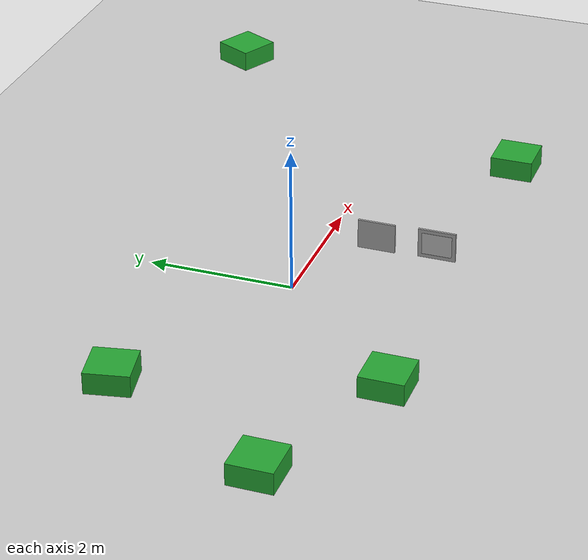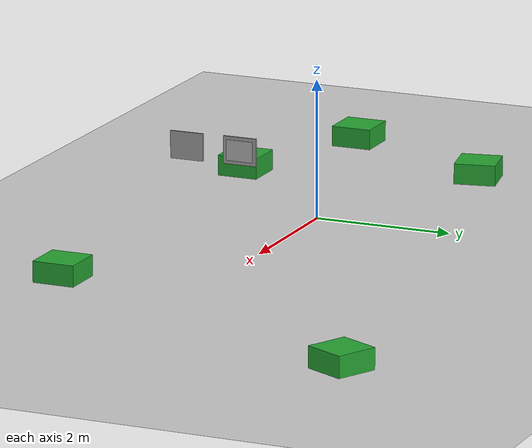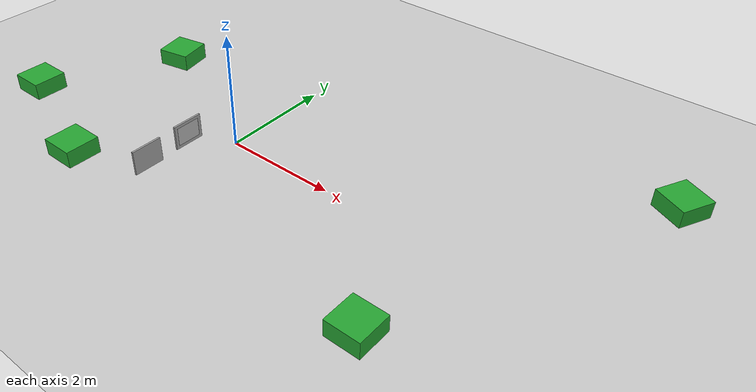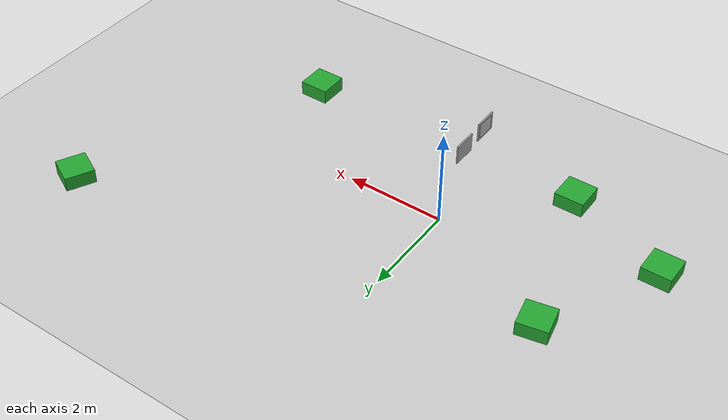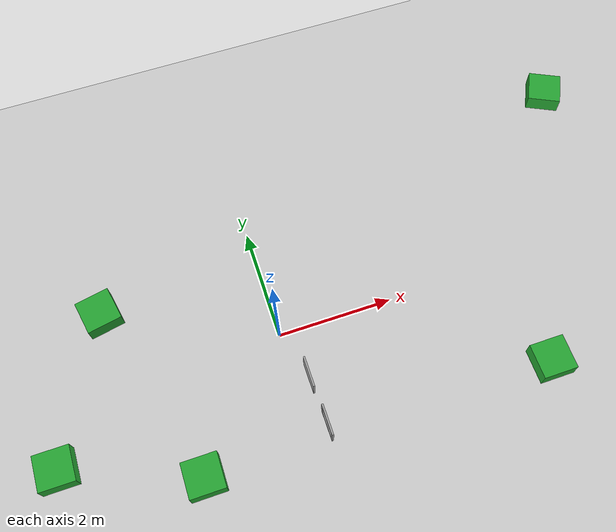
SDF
<sdf version="1.6">
 <world name="default">
  <light name="sun" type="directional">
   <pose>0 0 10 0 -0 0</pose>
   <diffuse>0.8 0.8 0.8 1</diffuse>
   <specular>0.2 0.2 0.2 1</specular>
   <attenuation>
    <range>1000</range>
    <constant>0.9</constant>
    <linear>0.01</linear>
    <quadratic>0.001</quadratic>
   </attenuation>
   <direction>-0.5 0.1 -0.9</direction>
  </light>
  <model name="fnr2015_map">
   <static>1</static>
   <link name="link">
    <collision name="collision">
     <geometry><plane><normal>0 0 1</normal><size>29.9 22</size></plane></geometry>
     <surface><friction><ode><mu>100</mu><mu2>50</mu2></ode></friction></surface>
    </collision>
    <visual name="visual">
     <cast_shadows>0</cast_shadows>
     <geometry><plane><normal>0 0 1</normal><size>29.9 22</size></plane></geometry>
     <material>
      <script>
       <uri>model://FNR2015_map/materials/scripts</uri>
       <uri>model://FNR2015_map/materials/textures</uri>
       <name>FNR2015/Image</name>
      </script>
     </material>
    </visual>
   </link>
  </model>
  <model name="tft_1">
   <static>1</static>
   <link name="link">
    <gravity>0</gravity>
    <visual name="visual">
     <geometry><plane><normal>0 0 0</normal><size>0.4 0.3</size></plane></geometry>
     <material>
      <script>
       <uri>model://FNR/materials/scripts</uri>
       <uri>model://FNR/materials/textures</uri>
       <name>FNR/TFT/Stop</name>
      </script>
     </material>
     <plugin name="visualChange" filename="libvisualChange.so"/>
    </visual>
   </link>
   <link name="monitor">
    <pose>0 0 -0.015 0 -0 0</pose>
    <gravity>0</gravity>
    <visual name="monitor"><geometry><mesh><uri>model://tft/monitor.dae</uri></mesh></geometry></visual>
   </link>
   <pose>0.2 -1.9 0.9 1.57 0 -1.57</pose>
  </model>
  <model name="tft_1">
   <static>1</static>
   <link name="link">
    <gravity>0</gravity>
    <visual name="visual">
     <geometry><plane><normal>0 0 0</normal><size>0.4 0.3</size></plane></geometry>
     <material>
      <script>
       <uri>model://FNR/materials/scripts</uri>
       <uri>model://FNR/materials/textures</uri>
       <name>FNR/TFT/Stop</name>
      </script>
     </material>
     <plugin name="visualChange" filename="libvisualChange.so"/>
    </visual>
   </link>
   <link name="monitor">
    <pose>0 0 -0.015 0 -0 0</pose>
    <gravity>0</gravity>
    <visual name="monitor"><geometry><mesh><uri>model://tft/monitor.dae</uri></mesh></geometry></visual>
   </link>
   <pose>0.2 -1.9 0.9 1.57 0 -1.57</pose>
  </model>
  <model name="tft_2">
   <static>1</static>
   <link name="link">
    <gravity>0</gravity>
    <visual name="visual">
     <geometry><plane><normal>0 0 0</normal><size>0.4 0.3</size></plane></geometry>
     <material>
      <script>
       <uri>model://FNR/materials/scripts</uri>
       <uri>model://FNR/materials/textures</uri>
       <name>FNR/TFT/Stop</name>
      </script>
     </material>
     <plugin name="visualChange" filename="libvisualChange.so"/>
    </visual>
   </link>
   <link name="monitor">
    <pose>0 0 -0.015 0 -0 0</pose>
    <gravity>0</gravity>
    <visual name="monitor"><geometry><mesh><uri>model://tft/monitor.dae</uri></mesh></geometry></visual>
   </link>
   <pose>0.2 -1.1 0.9 1.57 -0 1.57</pose>
  </model>
  <model name="tft_2">
   <static>1</static>
   <link name="link">
    <gravity>0</gravity>
    <visual name="visual">
     <geometry><plane><normal>0 0 0</normal><size>0.4 0.3</size></plane></geometry>
     <material>
      <script>
       <uri>model://FNR/materials/scripts</uri>
       <uri>model://FNR/materials/textures</uri>
       <name>FNR/TFT/Stop</name>
      </script>
     </material>
     <plugin name="visualChange" filename="libvisualChange.so"/>
    </visual>
   </link>
   <link name="monitor">
    <pose>0 0 -0.015 0 -0 0</pose>
    <gravity>0</gravity>
    <visual name="monitor"><geometry><mesh><uri>model://tft/monitor.dae</uri></mesh></geometry></visual>
   </link>
   <pose>0.2 -1.1 0.9 1.57 -0 1.57</pose>
  </model>
  <light name="point_light" type="point">
   <pose>0 -1.9 0.9 0 -0 0</pose>
   <diffuse>1 1 1 1</diffuse>
   <specular>0.1 0.1 0.1 1</specular>
   <attenuation>
    <range>2</range>
    <linear>0.2</linear>
    <constant>0.8</constant>
    <quadratic>0.01</quadratic>
   </attenuation>
   <cast_shadows>0</cast_shadows>
   <direction>0 0 -1</direction>
  </light>
  <plugin name="WorldManager" filename="libworldManager.so"/>
  <gravity>0 0 -9.8</gravity>
  <magnetic_field>6e-06 2.3e-05 -4.2e-05</magnetic_field>
  <atmosphere type="adiabatic"/>
  <physics name="default_physics" default="0" type="ode">
   <max_step_size>0.001</max_step_size>
   <real_time_factor>1</real_time_factor>
   <real_time_update_rate>1000</real_time_update_rate>
  </physics>
  <scene><ambient>0.4 0.4 0.4 1</ambient><background>0.7 0.7 0.7 1</background><shadows>1</shadows></scene>
  <audio><device>default</device></audio>
  <spherical_coordinates>
   <surface_model>EARTH_WGS84</surface_model>
   <latitude_deg>0</latitude_deg>
   <longitude_deg>0</longitude_deg>
   <elevation>0</elevation>
   <heading_deg>0</heading_deg>
  </spherical_coordinates>
  <model name="obstacle">
   <pose>4.15816 -1.92568 -0.35 0 -0 0</pose>
   <link name="main_link">
    <pose>0 0 0.5 0 -0 0</pose>
    <collision name="collision"><geometry><box><size>0.6 0.6 0.3</size></box></geometry></collision>
    <visual name="visual">
     <geometry><box><size>0.6 0.6 0.3</size></box></geometry>
     <material>
      <script><uri>file://media/materials/scripts/gazebo.material</uri><name>Gazebo/Green</name></script>
     </material>
    </visual>
    <inertial>
     <inertia><ixx>1</ixx><ixy>0</ixy><ixz>0</ixz><iyy>1</iyy><iyz>0</iyz><izz>1</izz></inertia>
     <mass>1</mass>
    </inertial>
   </link>
  </model>
  <model name="obstacle_0">
   <pose>-4.00894 -1.05837 -0.35 0 -0 0</pose>
   <link name="main_link">
    <pose>0 0 0.5 0 -0 0</pose>
    <collision name="collision"><geometry><box><size>0.6 0.6 0.3</size></box></geometry></collision>
    <visual name="visual">
     <geometry><box><size>0.6 0.6 0.3</size></box></geometry>
     <material>
      <script><uri>file://media/materials/scripts/gazebo.material</uri><name>Gazebo/Green</name></script>
     </material>
    </visual>
    <inertial>
     <inertia><ixx>1</ixx><ixy>0</ixy><ixz>0</ixz><iyy>1</iyy><iyz>0</iyz><izz>1</izz></inertia>
     <mass>1</mass>
    </inertial>
   </link>
  </model>
  <model name="obstacle_clone">
   <pose>6.36915 3.09344 -0.35 0 -0 1.10932</pose>
   <link name="main_link">
    <pose>0 0 0.5 0 -0 0</pose>
    <collision name="collision"><geometry><box><size>0.6 0.6 0.3</size></box></geometry></collision>
    <visual name="visual">
     <geometry><box><size>0.6 0.6 0.3</size></box></geometry>
     <material>
      <script><uri>file://media/materials/scripts/gazebo.material</uri><name>Gazebo/Green</name></script>
     </material>
    </visual>
    <inertial>
     <inertia><ixx>1</ixx><ixy>0</ixy><ixz>0</ixz><iyy>1</iyy><iyz>0</iyz><izz>1</izz></inertia>
     <mass>1</mass>
    </inertial>
   </link>
  </model>
  <model name="obstacle_0_clone">
   <pose>-1.83157 -1.91548 -0.35 0 -0 0</pose>
   <link name="main_link">
    <pose>0 0 0.5 0 -0 0</pose>
    <collision name="collision"><geometry><box><size>0.6 0.6 0.3</size></box></geometry></collision>
    <visual name="visual">
     <geometry><box><size>0.6 0.6 0.3</size></box></geometry>
     <material>
      <script><uri>file://media/materials/scripts/gazebo.material</uri><name>Gazebo/Green</name></script>
     </material>
    </visual>
    <inertial>
     <inertia><ixx>1</ixx><ixy>0</ixy><ixz>0</ixz><iyy>1</iyy><iyz>0</iyz><izz>1</izz></inertia>
     <mass>1</mass>
    </inertial>
   </link>
  </model>
  <model name="obstacle_0_clone_0">
   <pose>-2.80573 1.31607 -0.35 0 -0 0.195261</pose>
   <link name="main_link">
    <pose>0 0 0.5 0 -0 0</pose>
    <collision name="collision"><geometry><box><size>0.6 0.6 0.3</size></box></geometry></collision>
    <visual name="visual">
     <geometry><box><size>0.6 0.6 0.3</size></box></geometry>
     <material>
      <script><uri>file://media/materials/scripts/gazebo.material</uri><name>Gazebo/Green</name></script>
     </material>
    </visual>
    <inertial>
     <inertia><ixx>1</ixx><ixy>0</ixy><ixz>0</ixz><iyy>1</iyy><iyz>0</iyz><izz>1</izz></inertia>
     <mass>1</mass>
    </inertial>
   </link>
  </model>
 </world>
</sdf>
